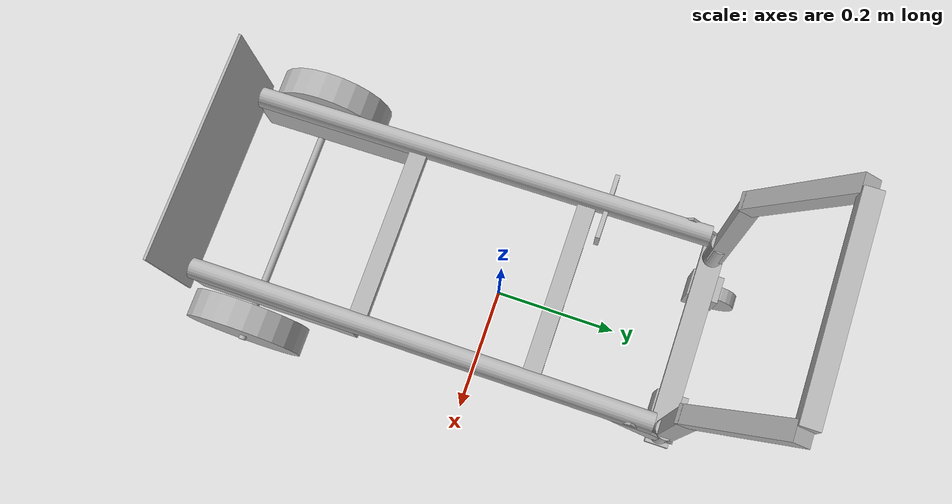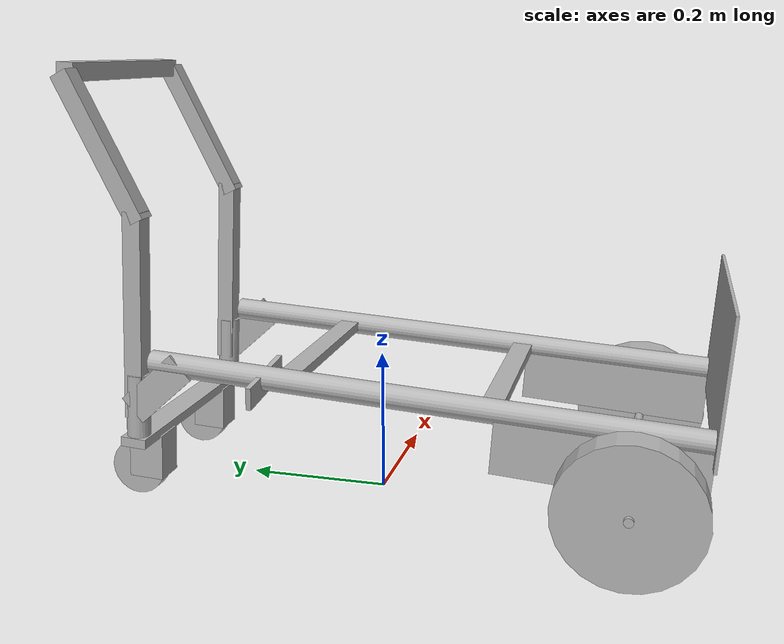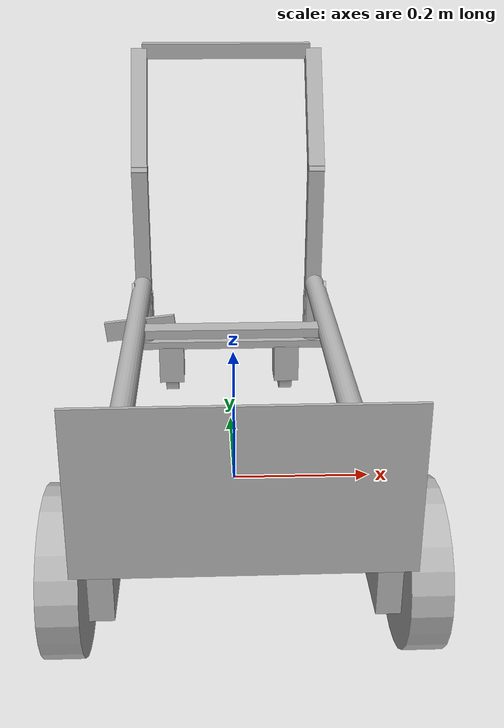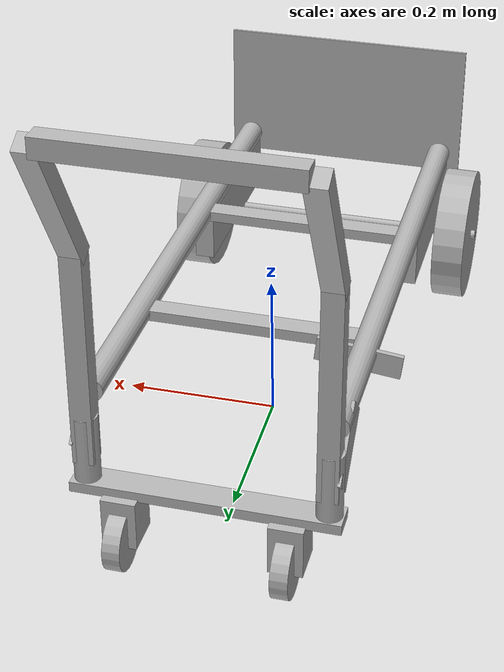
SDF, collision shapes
<?xml version="1.0" ?>
<sdf version="1.6">
  <model name="Handtruck_02">
    <link name="base_link">
      <visual name="base_visual">
        <geometry>
          <mesh>
            <uri>base_visual.glb</uri>
          </mesh>
        </geometry>
      </visual>
      <collision name="sm_handtruck063_collider_box">
        <pose>-0.001147 -0.453465 0.237538 -6e-06 -1.513413 -1.570791</pose>
        <geometry>
          <box>
            <size>0.19 0.35 0.004044</size>
          </box>
        </geometry>
      </collision>
      <collision name="sm_handtruck063_collider_cylinder">
        <pose>0.145714 -0.085178 0.190179 1.62818 0.0 -0.0</pose>
        <geometry>
          <cylinder>
            <radius>0.016</radius>
            <length>0.73</length>
          </cylinder>
        </geometry>
      </collision>
      <collision name="sm_handtruck063_collider_cylinder.001">
        <pose>-0.145714 -0.085178 0.190179 1.62818 0.0 -0.0</pose>
        <geometry>
          <cylinder>
            <radius>0.016</radius>
            <length>0.73</length>
          </cylinder>
        </geometry>
      </collision>
      <collision name="sm_handtruck063_collider_cylinder.002">
        <pose>0.145714 0.304507 0.142736 0.057384 0.0 -0.0</pose>
        <geometry>
          <cylinder>
            <radius>0.016</radius>
            <length>0.099753</length>
          </cylinder>
        </geometry>
      </collision>
      <collision name="sm_handtruck063_collider_cylinder.003">
        <pose>-0.145714 0.304507 0.142736 0.057384 0.0 -0.0</pose>
        <geometry>
          <cylinder>
            <radius>0.016</radius>
            <length>0.099753</length>
          </cylinder>
        </geometry>
      </collision>
      <collision name="sm_handtruck063_collider_box.001">
        <pose>0.0 0.306686 0.098317 -0.057383 -3.141593 0.0</pose>
        <geometry>
          <box>
            <size>0.326971 0.036011 0.013351</size>
          </box>
        </geometry>
      </collision>
      <collision name="sm_handtruck063_collider_box.004">
        <pose>0.0 0.091209 0.199106 -1.570796 0.057384 -1.570796</pose>
        <geometry>
          <box>
            <size>0.027884 0.013984 0.29874</size>
          </box>
        </geometry>
      </collision>
      <collision name="sm_handtruck063_collider_box.005">
        <pose>-0.139599 0.121274 0.194211 1.628535 -0.110864 -0.006395</pose>
        <geometry>
          <box>
            <size>0.107613 0.030678 0.007069</size>
          </box>
        </geometry>
      </collision>
      <collision name="sm_handtruck063_collider_box.006">
        <pose>0.0 -0.179711 0.183542 -3.141593 0.057384 -1.570796</pose>
        <geometry>
          <box>
            <size>0.027884 0.29874 0.013984</size>
          </box>
        </geometry>
      </collision>
      <collision name="sm_handtruck063_collider_cylinder.006">
        <pose>0.0 -0.355127 0.091144 -1.570796 1.62818 -1.570796</pose>
        <geometry>
          <cylinder>
            <radius>0.00605</radius>
            <length>0.437087</length>
          </cylinder>
        </geometry>
      </collision>
      <collision name="sm_handtruck063_collider_cylinder.007">
        <pose>0.190715 -0.355127 0.091139 -1.570796 1.62818 -1.570796</pose>
        <geometry>
          <cylinder>
            <radius>0.093276</radius>
            <length>0.043851</length>
          </cylinder>
        </geometry>
      </collision>
      <collision name="sm_handtruck063_collider_cylinder.008">
        <pose>-0.190715 -0.355127 0.091139 -1.570796 1.62818 -1.570796</pose>
        <geometry>
          <cylinder>
            <radius>0.093276</radius>
            <length>0.043851</length>
          </cylinder>
        </geometry>
      </collision>
      <collision name="sm_handtruck063_collider_box.007">
        <pose>0.145654 -0.315424 0.133999 3.073895 -3.141645 -6e-06</pose>
        <geometry>
          <box>
            <size>0.026144 0.26372 0.072271</size>
          </box>
        </geometry>
      </collision>
      <collision name="sm_handtruck063_collider_box.008">
        <pose>-0.145654 -0.315424 0.133999 3.073895 3.141645 6e-06</pose>
        <geometry>
          <box>
            <size>0.026144 0.26372 0.072271</size>
          </box>
        </geometry>
      </collision>
      <collision name="sm_handtruck063_collider_box.009">
        <pose>0.158544 0.26898 0.177218 -1.57079 0.728006 1.570795</pose>
        <geometry>
          <box>
            <size>0.098995 0.043333 0.004184</size>
          </box>
        </geometry>
      </collision>
      <collision name="sm_handtruck063_collider_box.010">
        <pose>-0.158544 0.26898 0.177218 1.57079 0.728006 1.570797</pose>
        <geometry>
          <box>
            <size>0.098995 0.043333 0.004184</size>
          </box>
        </geometry>
      </collision>
      <collision name="sm_handtruck063_collider_box.011">
        <pose>0.145129 0.298554 0.273247 1.62818 0.0 0.0</pose>
        <geometry>
          <box>
            <size>0.026027 0.283282 0.025135</size>
          </box>
        </geometry>
      </collision>
      <collision name="sm_handtruck063_collider_box.012">
        <pose>0.145129 0.333209 0.495312 1.104581 0.0 0.0</pose>
        <geometry>
          <box>
            <size>0.026027 0.211049 0.025135</size>
          </box>
        </geometry>
      </collision>
      <collision name="sm_handtruck063_collider_box.013">
        <pose>-0.0 0.381886 0.590536 1.62818 0.0 0.0</pose>
        <geometry>
          <box>
            <size>0.279602 0.024447 0.024483</size>
          </box>
        </geometry>
      </collision>
      <collision name="sm_handtruck063_collider_box.014">
        <pose>-0.145129 0.333209 0.495312 1.104581 0.0 0.0</pose>
        <geometry>
          <box>
            <size>0.026027 0.211049 0.025135</size>
          </box>
        </geometry>
      </collision>
      <collision name="sm_handtruck063_collider_box.015">
        <pose>-0.145129 0.298554 0.273247 1.62818 0.0 0.0</pose>
        <geometry>
          <box>
            <size>0.026027 0.283282 0.025135</size>
          </box>
        </geometry>
      </collision>
      <collision name="sm_handtruckcart002_collider_box">
        <pose>-0.100573 0.312464 0.061994 1.524687 -1e-06 -3.141593</pose>
        <geometry>
          <box>
            <size>0.042673 0.065363 0.050016</size>
          </box>
        </geometry>
      </collision>
      <collision name="sm_handtruckcart001_collider_box">
        <pose>0.100573 0.312464 0.061994 1.524687 1e-06 -3.141593</pose>
        <geometry>
          <box>
            <size>0.042673 0.065363 0.050016</size>
          </box>
        </geometry>
      </collision>
      <collision name="sm_handtruckcart004_collider_cylinder">
        <pose>-0.100557 0.331977 0.038932 1.570796 0.0 1.570796</pose>
        <geometry>
          <cylinder>
            <radius>0.039251</radius>
            <length>0.021759</length>
          </cylinder>
        </geometry>
      </collision>
      <collision name="sm_handtruckcart003_collider_cylinder">
        <pose>0.100557 0.331977 0.038932 1.570796 0.0 1.570796</pose>
        <geometry>
          <cylinder>
            <radius>0.039251</radius>
            <length>0.021759</length>
          </cylinder>
        </geometry>
      </collision>
    </link>
  </model>
</sdf>
